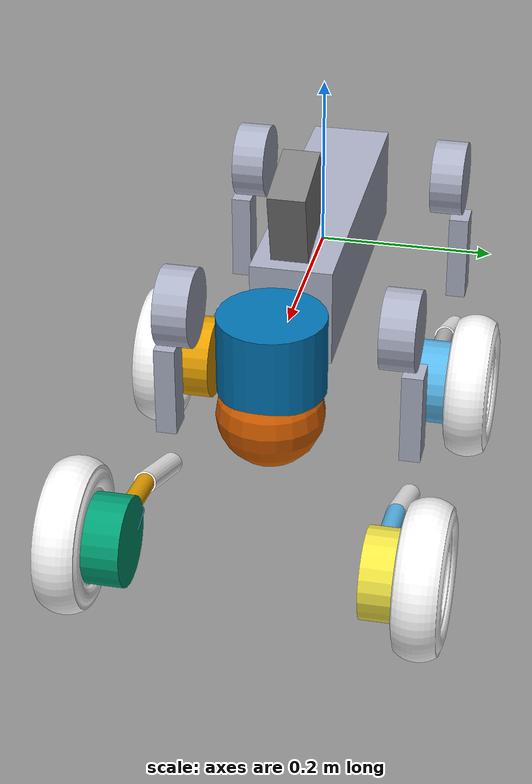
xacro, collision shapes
<?xml version='1.0' encoding='utf-8'?>
<robot name="go2w_description" xmlns:xacro="http://ros.org/wiki/xacro">
  <xacro:arg name="pointcloud_noise_enabled" default="false"/>
  <xacro:arg name="pointcloud_noise_mean" default="0.0"/>
  <xacro:arg name="pointcloud_noise_stddev" default="0.015"/>

  <!-- Include Livox MID-360 LiDAR macro -->
  <xacro:include filename="$(find go2_gazebo_sim)/urdf/go2w/livox_mid360.xacro"/>
  <xacro:property name="go2w_mesh_root" value="file://$(find go2w_description)/dae"/>

  <!-- Instantiate Livox MID-360 LiDAR attached to IMU frame -->
  <xacro:livox_mid360 parent="imu" name="livox_mid360"/>

  <link name="base">
    <inertial>
      <origin xyz="0.021112 0 -0.005366" rpy="0 0 0" />
      <mass value="6.921" />
      <inertia ixx="0.02448" ixy="0.00012166" ixz="0.0014849" iyy="0.098077" iyz="-3.12E-05" izz="0.107" />
    </inertial>
    <visual>
      <origin xyz="0 0 0" rpy="0 0 0" />
      <geometry>
        <mesh filename="${go2w_mesh_root}/base.dae" />
      </geometry>
      <material name="深色橡胶_001-effect"><color rgba="0.6717055 0.6924257 0.7742702 1" /></material><material name="白色logo_001-effect"><color rgba="1 1 1 1" /></material><material name="黑色贴纸_007-effect"><color rgba="0.009018 0.009018 0.009018 1" /></material><material name="黑色金属_007-effect"><color rgba="0.01341 0.01341 0.01341 1" /></material><material name="黑色塑料_003-effect"><color rgba="0.023455 0.023455 0.023455 1" /></material></visual>
    <collision>
      <origin rpy="0 0 0" xyz="0 0 0" />
      <geometry>
        <box size="0.3762 0.0935 0.114" />
      </geometry>
    </collision>
  </link>

  <!-- Bridge frame for controllers that expect base_link. -->
  <link name="base_link">
    <inertial>
      <origin xyz="0 0 0" rpy="0 0 0" />
      <mass value="0.001" />
      <inertia ixx="1e-6" ixy="0" ixz="0" iyy="1e-6" iyz="0" izz="1e-6" />
    </inertial>
  </link>
  <joint name="base_link_to_base" type="fixed">
    <origin xyz="0 0 0" rpy="0 0 0" />
    <parent link="base_link" />
    <child link="base" />
    <axis xyz="0 0 0" />
  </joint>
  <link name="Head_upper">
    <inertial>
      <origin xyz="0 0 0" rpy="0 0 0" />
      <mass value="0.001" />
      <inertia ixx="9.6e-06" ixy="0" ixz="0" iyy="9.6e-06" iyz="0" izz="9.6e-06" />
    </inertial>
    <collision>
      <origin xyz="0 0 0" rpy="0 0 0" />
      <geometry>
        <cylinder radius="0.06" length="0.09" />
      </geometry>
    </collision>
  </link>
  <joint name="Head_upper_joint" type="fixed" dont_collapse="true">
    <origin xyz="0.285 0 0.01" rpy="0 0 0" />
    <parent link="base" />
    <child link="Head_upper" />
    <axis xyz="0 0 0" />
  </joint>
  <link name="Head_lower">
    <inertial>
      <origin xyz="0 0 0" rpy="0 0 0" />
      <mass value="0.001" />
      <inertia ixx="9.6e-06" ixy="0" ixz="0" iyy="9.6e-06" iyz="0" izz="9.6e-06" />
    </inertial>
    <collision>
      <origin xyz="0 0 0" rpy="0 0 0" />
      <geometry>
        <sphere radius="0.06" />
      </geometry>
    </collision>
  </link>
  <joint name="Head_lower_joint" type="fixed" dont_collapse="true">
    <origin xyz="0.008 0 -0.07" rpy="0 0 0" />
    <parent link="Head_upper" />
    <child link="Head_lower" />
    <axis xyz="0 0 0" />
  </joint>
  <link name="FL_hip">
    <inertial>
      <origin xyz="-0.0054 0.00194 -0.000105" rpy="0 0 0" />
      <mass value="0.678" />
      <inertia ixx="0.00048" ixy="-3.01E-06" ixz="1.11E-06" iyy="0.000884" iyz="-1.42E-06" izz="0.000596" />
    </inertial>
    <visual>
      <origin xyz="0 0 0" rpy="0 0 0" />
      <geometry>
        <mesh filename="${go2w_mesh_root}/hip.dae" />
      </geometry>
      <material name="深色橡胶_001-effect"><color rgba="0.6717055 0.6924257 0.7742702 1" /></material><material name="Material-effect"><color rgba="0.9 0.95 0.95 1" /></material></visual>
    <collision>
      <origin rpy="1.5707963267948966 0 0" xyz="0 0.08 0" />
      <geometry>
        <cylinder length="0.04" radius="0.046" />
      </geometry>
    </collision>
  </link>
  <joint name="FL_hip_joint" type="revolute">
    <origin xyz="0.1934 0.0465 0" rpy="0 0 0" />
    <parent link="base" />
    <child link="FL_hip" />
    <axis xyz="1 0 0" />
    <limit lower="-1.0472" upper="1.0472" effort="23.7" velocity="30.1" />
  </joint>
  <link name="FL_thigh">
    <inertial>
      <origin xyz="-0.00374 -0.0223 -0.0327" rpy="0 0 0" />
      <mass value="1.152" />
      <inertia ixx="0.00584" ixy="8.72E-05" ixz="-0.000289" iyy="0.0058" iyz="0.000808" izz="0.00103" />
    </inertial>
    <visual>
      <origin xyz="0 0 0" rpy="0 0 0" />
      <geometry>
        <mesh filename="${go2w_mesh_root}/thigh.dae" />
      </geometry>
      <material name="深色橡胶_003-effect"><color rgba="0.6717055 0.6924257 0.7742702 1" /></material><material name="Material_009-effect"><color rgba="0.9 0.95 0.95 1" /></material></visual>
    <collision>
      <origin rpy="0 1.5707963267948966 0" xyz="0 0 -0.1065" />
      <geometry>
        <box size="0.11 0.0245 0.034" />
      </geometry>
    </collision>
  </link>
  <joint name="FL_thigh_joint" type="revolute">
    <origin xyz="0 0.0955 0" rpy="0 0 0" />
    <parent link="FL_hip" />
    <child link="FL_thigh" />
    <axis xyz="0 1 0" />
    <limit lower="-1.5707963267948966" upper="3.4907" effort="23.7" velocity="30.1" />
  </joint>
  <link name="FL_calf">
    <inertial>
      <origin xyz="0.00548 -0.000975 -0.115" rpy="0 0 0" />
      <mass value="0.154" />
      <inertia ixx="0.00108" ixy="3.4E-07" ixz="1.72E-05" iyy="0.0011" iyz="8.28E-06" izz="3.29E-05" />
    </inertial>
    <visual>
      <origin xyz="0 0 0" rpy="0 0 0" />
      <geometry>
        <mesh filename="${go2w_mesh_root}/calf.stl" />
      </geometry>
      <material name="">
        <color rgba="1 1 1 1" />
      </material>
    </visual>
    <collision>
      <origin rpy="0 -0.21 0" xyz="0.008 0 -0.06" />
      <geometry>
        <cylinder length="0.12" radius="0.012" />
      </geometry>
    </collision>
  </link>
  <joint name="FL_calf_joint" type="revolute">
    <origin xyz="0 0 -0.213" rpy="0 0 0" />
    <parent link="FL_thigh" />
    <child link="FL_calf" />
    <axis xyz="0 1 0" />
    <limit lower="-2.7227" upper="-0.83776" effort="35.55" velocity="20.07" />
  </joint>
  <link name="FL_calflower">
    <collision>
      <origin rpy="0 0 0" xyz="0 0 0" />
      <geometry>
        <cylinder length="0.065" radius="0.011" />
      </geometry>
    </collision>
  </link>
  <joint name="FL_calflower_joint" type="fixed">
    <origin xyz="0.020 0 -0.148" rpy="0 0.05 0" />
    <parent link="FL_calf" />
    <child link="FL_calflower" />
    <axis xyz="0 0 0" />
  </joint>
  <link name="FL_calflower1">
    <collision>
      <origin rpy="0 0 0" xyz="0 0 0" />
      <geometry>
        <cylinder length="0.03" radius="0.0155" />
      </geometry>
    </collision>
  </link>
  <joint name="FL_calflower1_joint" type="fixed">
    <origin xyz="-0.01 0 -0.04" rpy="0 0.48 0" />
    <parent link="FL_calflower" />
    <child link="FL_calflower1" />
    <axis xyz="0 0 0" />
  </joint>

  <link name="FL_foot_motor">
    <inertial>
      <origin xyz="0 0.0 0" rpy="0 0 0" />
      <mass value="0.646" />
      <inertia ixx="0.001" ixy="0" ixz="0" iyy="0.0016" iyz="0" izz="0.001" />
    </inertial>
    <collision>
      <origin rpy="1.5707963267948966 0 0" xyz="0 0 0" />
      <geometry>
        <cylinder length="0.05" radius="0.05" />
      </geometry>
    </collision>
  </link>

  <joint name="FL_foot_motor_joint" type="fixed">
    <origin xyz="-0.00 0.01 -0.2264" rpy="0 0.0 0" />
    <parent link="FL_calf" />
    <child link="FL_foot_motor" />
    <axis xyz="0 0 0" />
  </joint>

  <link name="FL_foot">
    <inertial>
      <origin xyz="0 0.06 0" rpy="0 0 0" />
      <mass value="0.520" />
      <inertia ixx="0.0007" ixy="0" ixz="0" iyy="0.0012" iyz="0" izz="0.0007" />
    </inertial>
    <visual>
      <origin xyz="0 0 0" rpy="0 0 0" />
      <geometry>
        <mesh filename="${go2w_mesh_root}/left_wheel.dae" />
      </geometry>
      <material name="">
        <color rgba="1 1 1 1" />
      </material>
    </visual>
    <collision>
      <origin rpy="0 0 0" xyz="0 0.0 0" />
      <geometry>
        <mesh filename="${go2w_mesh_root}/left_wheel.dae" />
      </geometry>
    </collision>
  </link>
  <joint name="FL_foot_joint" type="continuous">
    <origin xyz="0 0 -0.2264" rpy="0 0 0" />
    <parent link="FL_calf" />
    <child link="FL_foot" />
    <axis xyz="0 1 0" />

      <limit effort="23.7" velocity="30.1" />
  </joint>

  <link name="FR_hip">
    <inertial>
      <origin xyz="-0.0054 -0.00194 -0.000105" rpy="0 0 0" />
      <mass value="0.678" />
      <inertia ixx="0.00048" ixy="3.01E-06" ixz="1.11E-06" iyy="0.000884" iyz="1.42E-06" izz="0.000596" />
    </inertial>
    <visual>
      <origin xyz="0 0 0" rpy="3.1415 0 0" />
      <geometry>
        <mesh filename="${go2w_mesh_root}/hip.dae" />
      </geometry>
      <material name="深色橡胶_001-effect"><color rgba="0.6717055 0.6924257 0.7742702 1" /></material><material name="Material-effect"><color rgba="0.9 0.95 0.95 1" /></material></visual>
    <collision>
      <origin rpy="1.5707963267948966 0 0" xyz="0 -0.08 0" />
      <geometry>
        <cylinder length="0.04" radius="0.046" />
      </geometry>
    </collision>
  </link>
  <joint name="FR_hip_joint" type="revolute">
    <origin xyz="0.1934 -0.0465 0" rpy="0 0 0" />
    <parent link="base" />
    <child link="FR_hip" />
    <axis xyz="1 0 0" />
    <limit lower="-1.0472" upper="1.0472" effort="23.7" velocity="30.1" />
  </joint>
  <link name="FR_thigh">
    <inertial>
      <origin xyz="-0.00374 0.0223 -0.0327" rpy="0 0 0" />
      <mass value="1.152" />
      <inertia ixx="0.00584" ixy="-8.72E-05" ixz="-0.000289" iyy="0.0058" iyz="-0.000808" izz="0.00103" />
    </inertial>
    <visual>
      <origin xyz="0 0 0" rpy="0 0 0" />
      <geometry>
        <mesh filename="${go2w_mesh_root}/thigh_mirror.dae" />
      </geometry>
      <material name="深色橡胶_012-effect"><color rgba="0.6717055 0.6924257 0.7742702 1" /></material><material name="Material_011-effect"><color rgba="0.9 0.95 0.95 1" /></material></visual>
    <collision>
      <origin rpy="0 1.5707963267948966 0" xyz="0 0 -0.1065" />
      <geometry>
        <box size="0.11 0.0245 0.034" />
      </geometry>
    </collision>
  </link>
  <joint name="FR_thigh_joint" type="revolute">
    <origin xyz="0 -0.0955 0" rpy="0 0 0" />
    <parent link="FR_hip" />
    <child link="FR_thigh" />
    <axis xyz="0 1 0" />
    <limit lower="-1.5707963267948966" upper="3.4907" effort="23.7" velocity="30.1" />
  </joint>
  <link name="FR_calf">
    <inertial>
      <origin xyz="0.00548 0.000975 -0.115" rpy="0 0 0" />
      <mass value="0.154" />
      <inertia ixx="0.00108" ixy="-3.4E-07" ixz="1.72E-05" iyy="0.0011" iyz="-8.28E-06" izz="3.29E-05" />
    </inertial>
    <visual>
      <origin xyz="0 0 0" rpy="0 0 0" />
      <geometry>
        <mesh filename="${go2w_mesh_root}/calf_mirror.stl" />
      </geometry>
      <material name="">
        <color rgba="1 1 1 1" />
      </material>
    </visual>
    <collision>
      <origin rpy="0 -0.2 0" xyz="0.01 0 -0.06" />
      <geometry>
        <cylinder length="0.12" radius="0.013" />
      </geometry>
    </collision>
  </link>
  <joint name="FR_calf_joint" type="revolute">
    <origin xyz="0 0 -0.213" rpy="0 0 0" />
    <parent link="FR_thigh" />
    <child link="FR_calf" />
    <axis xyz="0 1 0" />
    <limit lower="-2.7227" upper="-0.83776" effort="35.55" velocity="20.07" />
  </joint>
  <link name="FR_calflower">
    <collision>
      <origin rpy="0 0 0" xyz="0 0 0" />
      <geometry>
        <cylinder length="0.065" radius="0.011" />
      </geometry>
    </collision>
  </link>
  <joint name="FR_calflower_joint" type="fixed">
    <origin xyz="0.020 0 -0.148" rpy="0 0.05 0" />
    <parent link="FR_calf" />
    <child link="FR_calflower" />
    <axis xyz="0 0 0" />
  </joint>
  <link name="FR_calflower1">
    <collision>
      <origin rpy="0 0 0" xyz="0 0 0" />
      <geometry>
        <cylinder length="0.03" radius="0.0155" />
      </geometry>
    </collision>
  </link>
  <joint name="FR_calflower1_joint" type="fixed">
    <origin xyz="-0.01 0 -0.04" rpy="0 0.48 0" />
    <parent link="FR_calflower" />
    <child link="FR_calflower1" />
    <axis xyz="0 0 0" />
  </joint>

  <link name="FR_foot_motor">
    <inertial>
      <origin xyz="0 0.0 0" rpy="0 0 0" />
      <mass value="0.646" />
      <inertia ixx="0.001" ixy="0" ixz="0" iyy="0.0016" iyz="0" izz="0.001" />
    </inertial>
    <collision>
      <origin rpy="1.5707963267948966 0 0" xyz="0 0 0" />
      <geometry>
        <cylinder length="0.05" radius="0.05" />
      </geometry>
    </collision>
  </link>

  <joint name="FR_foot_motor_joint" type="fixed">
    <origin xyz="0.0 -0.01 -0.2264" rpy="0 0.0 0" />
    <parent link="FR_calf" />
    <child link="FR_foot_motor" />
    <axis xyz="0 0 0" />
  </joint>

  <link name="FR_foot">
    <inertial>
      <origin xyz="0 -0.06 0" rpy="0 0 0" />
      <mass value="0.520" />
      <inertia ixx="0.0007" ixy="0" ixz="0" iyy="0.0012" iyz="0" izz="0.0007" />
    </inertial>
    <visual>
      <origin xyz="0 0 0" rpy="0 0 0" />
      <geometry>
        <mesh filename="${go2w_mesh_root}/right_wheel.dae" />
      </geometry>
      <material name="">
        <color rgba="1 1 1 1" />
      </material>
    </visual>
    <collision>
      <origin rpy="0 0 0" xyz="0 -0.0 0" />
      <geometry>
        <mesh filename="${go2w_mesh_root}/right_wheel.dae" />

      </geometry>
    </collision>
  </link>
  <joint name="FR_foot_joint" type="continuous">
    <origin xyz="0 0 -0.2264" rpy="0 0 0" />
    <parent link="FR_calf" />
    <child link="FR_foot" />
    <axis xyz="0 1 0" />
      <limit effort="23.7" velocity="30.1" />
  </joint>

  <link name="RL_hip">
    <inertial>
      <origin xyz="0.0054 0.00194 -0.000105" rpy="0 0 0" />
      <mass value="0.678" />
      <inertia ixx="0.00048" ixy="3.01E-06" ixz="-1.11E-06" iyy="0.000884" iyz="-1.42E-06" izz="0.000596" />
    </inertial>
    <visual>
      <origin xyz="0 0 0" rpy="0 3.1415 0" />
      <geometry>
        <mesh filename="${go2w_mesh_root}/hip.dae" />
      </geometry>
      <material name="深色橡胶_001-effect"><color rgba="0.6717055 0.6924257 0.7742702 1" /></material><material name="Material-effect"><color rgba="0.9 0.95 0.95 1" /></material></visual>
    <collision>
      <origin rpy="1.5707963267948966 0 0" xyz="0 0.08 0" />
      <geometry>
        <cylinder length="0.04" radius="0.046" />
      </geometry>
    </collision>
  </link>
  <joint name="RL_hip_joint" type="revolute">
    <origin xyz="-0.1934 0.0465 0" rpy="0 0 0" />
    <parent link="base" />
    <child link="RL_hip" />
    <axis xyz="1 0 0" />
    <limit lower="-1.0472" upper="1.0472" effort="23.7" velocity="30.1" />
  </joint>
  <link name="RL_thigh">
    <inertial>
      <origin xyz="-0.00374 -0.0223 -0.0327" rpy="0 0 0" />
      <mass value="1.152" />
      <inertia ixx="0.00584" ixy="8.72E-05" ixz="-0.000289" iyy="0.0058" iyz="0.000808" izz="0.00103" />
    </inertial>
    <visual>
      <origin xyz="0 0 0" rpy="0 0 0" />
      <geometry>
        <mesh filename="${go2w_mesh_root}/thigh.dae" />
      </geometry>
      <material name="深色橡胶_003-effect"><color rgba="0.6717055 0.6924257 0.7742702 1" /></material><material name="Material_009-effect"><color rgba="0.9 0.95 0.95 1" /></material></visual>
    <collision>
      <origin rpy="0 1.5707963267948966 0" xyz="0 0 -0.1065" />
      <geometry>
        <box size="0.11 0.0245 0.034" />
      </geometry>
    </collision>
  </link>
  <joint name="RL_thigh_joint" type="revolute">
    <origin xyz="0 0.0955 0" rpy="0 0 0" />
    <parent link="RL_hip" />
    <child link="RL_thigh" />
    <axis xyz="0 1 0" />
    <limit lower="-0.5236" upper="4.5379" effort="23.7" velocity="30.1" />
  </joint>
  <link name="RL_calf">
    <inertial>
      <origin xyz="0.00548 -0.000975 -0.115" rpy="0 0 0" />
      <mass value="0.154" />
      <inertia ixx="0.00108" ixy="3.4E-07" ixz="1.72E-05" iyy="0.0011" iyz="8.28E-06" izz="3.29E-05" />
    </inertial>
    <visual>
      <origin xyz="0 0 0" rpy="0 0 0" />
      <geometry>
        <mesh filename="${go2w_mesh_root}/calf.stl" />
      </geometry>
      <material name="">
        <color rgba="1 1 1 1" />
      </material>
    </visual>
    <collision>
      <origin rpy="0 -0.2 0" xyz="0.01 0 -0.06" />
      <geometry>
        <cylinder length="0.12" radius="0.013" />
      </geometry>
    </collision>
  </link>
  <joint name="RL_calf_joint" type="revolute">
    <origin xyz="0 0 -0.213" rpy="0 0 0" />
    <parent link="RL_thigh" />
    <child link="RL_calf" />
    <axis xyz="0 1 0" />
    <limit lower="-2.7227" upper="-0.83776" effort="35.55" velocity="20.07" />
  </joint>
  <link name="RL_calflower">
    <collision>
      <origin rpy="0 0 0" xyz="0 0 0" />
      <geometry>
        <cylinder length="0.065" radius="0.011" />
      </geometry>
    </collision>
  </link>
  <joint name="RL_calflower_joint" type="fixed">
    <origin xyz="0.020 0 -0.148" rpy="0 0.05 0" />
    <parent link="RL_calf" />
    <child link="RL_calflower" />
    <axis xyz="0 0 0" />
  </joint>
  <link name="RL_calflower1">
    <collision>
      <origin rpy="0 0 0" xyz="0 0 0" />
      <geometry>
        <cylinder length="0.03" radius="0.0155" />
      </geometry>
    </collision>
  </link>
  <joint name="RL_calflower1_joint" type="fixed">
    <origin xyz="-0.01 0 -0.04" rpy="0 0.48 0" />
    <parent link="RL_calflower" />
    <child link="RL_calflower1" />
    <axis xyz="0 0 0" />
  </joint>

  <link name="RL_foot_motor">
  <inertial>
    <origin xyz="0 0.0 0" rpy="0 0 0" />
    <mass value="0.646" />
    <inertia ixx="0.001" ixy="0" ixz="0" iyy="0.0016" iyz="0" izz="0.001" />
  </inertial>
  <collision>
    <origin rpy="1.5707963267948966 0 0" xyz="0 0 0" />
    <geometry>
      <cylinder length="0.05" radius="0.05" />
    </geometry>
  </collision>
</link>

<joint name="RL_foot_motor_joint" type="fixed">
  <origin xyz="0.00 0.01 -0.2264" rpy="0 0.0 0" />
  <parent link="RL_calf" />
  <child link="RL_foot_motor" />
  <axis xyz="0 0 0" />
</joint>

  <link name="RL_foot">
    <inertial>
      <origin xyz="0 0.06 0" rpy="0 0 0" />
      <mass value="0.520" />
      <inertia ixx="0.0007" ixy="0" ixz="0" iyy="0.0012" iyz="0" izz="0.0007" />
    </inertial>
    <visual>
      <origin xyz="0 0 0" rpy="0 0 0" />
      <geometry>
        <mesh filename="${go2w_mesh_root}/left_wheel.dae" />
      </geometry>
      <material name="">
        <color rgba="1 1 1 1" />
      </material>
    </visual>
    <collision>
      <origin rpy="0 0 0" xyz="0 0.0 0" />
      <geometry>
        <mesh filename="${go2w_mesh_root}/left_wheel.dae" />

      </geometry>
    </collision>
  </link>
  <joint name="RL_foot_joint" type="continuous">
    <origin xyz="0.0 0 -0.2264" rpy="0 0 0" />
    <parent link="RL_calf" />
    <child link="RL_foot" />
    <axis xyz="0 1 0" />
      <limit effort="23.7" velocity="30.1" />
  </joint>

  <link name="RR_hip">
    <inertial>
      <origin xyz="0.0054 -0.00194 -0.000105" rpy="0 0 0" />
      <mass value="0.678" />
      <inertia ixx="0.00048" ixy="-3.01E-06" ixz="-1.11E-06" iyy="0.000884" iyz="1.42E-06" izz="0.000596" />
    </inertial>
    <visual>
      <origin xyz="0 0 0" rpy="3.1415 3.1415 0" />
      <geometry>
        <mesh filename="${go2w_mesh_root}/hip.dae" />
      </geometry>
      <material name="深色橡胶_001-effect"><color rgba="0.6717055 0.6924257 0.7742702 1" /></material><material name="Material-effect"><color rgba="0.9 0.95 0.95 1" /></material></visual>
    <collision>
      <origin rpy="1.5707963267948966 0 0" xyz="0 -0.08 0" />
      <geometry>
        <cylinder length="0.04" radius="0.046" />
      </geometry>
    </collision>
  </link>
  <joint name="RR_hip_joint" type="revolute">
    <origin xyz="-0.1934 -0.0465 0" rpy="0 0 0" />
    <parent link="base" />
    <child link="RR_hip" />
    <axis xyz="1 0 0" />
    <limit lower="-1.0472" upper="1.0472" effort="23.7" velocity="30.1" />
  </joint>
  <link name="RR_thigh">
    <inertial>
      <origin xyz="-0.00374 0.0223 -0.0327" rpy="0 0 0" />
      <mass value="1.152" />
      <inertia ixx="0.00584" ixy="-8.72E-05" ixz="-0.000289" iyy="0.0058" iyz="-0.000808" izz="0.00103" />
    </inertial>
    <visual>
      <origin xyz="0 0 0" rpy="0 0 0" />
      <geometry>
        <mesh filename="${go2w_mesh_root}/thigh_mirror.dae" />
      </geometry>
      <material name="深色橡胶_012-effect"><color rgba="0.6717055 0.6924257 0.7742702 1" /></material><material name="Material_011-effect"><color rgba="0.9 0.95 0.95 1" /></material></visual>
    <collision>
      <origin rpy="0 1.5707963267948966 0" xyz="0 0 -0.1065" />
      <geometry>
        <box size="0.11 0.0245 0.034" />
      </geometry>
    </collision>
  </link>
  <joint name="RR_thigh_joint" type="revolute">
    <origin xyz="0 -0.0955 0" rpy="0 0 0" />
    <parent link="RR_hip" />
    <child link="RR_thigh" />
    <axis xyz="0 1 0" />
    <limit lower="-0.5236" upper="4.5379" effort="23.7" velocity="30.1" />
  </joint>
  <link name="RR_calf">
    <inertial>
      <origin xyz="0.00548 0.000975 -0.115" rpy="0 0 0" />
      <mass value="0.154" />
      <inertia ixx="0.00108" ixy="-3.4E-07" ixz="1.72E-05" iyy="0.0011" iyz="-8.28E-06" izz="3.29E-05" />
    </inertial>
    <visual>
      <origin xyz="0 0 0" rpy="0 0 0" />
      <geometry>
        <mesh filename="${go2w_mesh_root}/calf_mirror.stl" />
      </geometry>
      <material name="">
        <color rgba="1 1 1 1" />
      </material>
    </visual>
    <collision>
      <origin rpy="0 -0.2 0" xyz="0.01 0 -0.06" />
      <geometry>
        <cylinder length="0.12" radius="0.013" />
      </geometry>
    </collision>
  </link>
  <joint name="RR_calf_joint" type="revolute">
    <origin xyz="0 0 -0.213" rpy="0 0 0" />
    <parent link="RR_thigh" />
    <child link="RR_calf" />
    <axis xyz="0 1 0" />
    <limit lower="-2.7227" upper="-0.83776" effort="35.55" velocity="20.07" />
  </joint>
  <link name="RR_calflower">
    <collision>
      <origin rpy="0 0 0" xyz="0 0 0" />
      <geometry>
        <cylinder length="0.065" radius="0.011" />
      </geometry>
    </collision>
  </link>
  <joint name="RR_calflower_joint" type="fixed">
    <origin xyz="0.020 0 -0.148" rpy="0 0.05 0" />
    <parent link="RR_calf" />
    <child link="RR_calflower" />
    <axis xyz="0 0 0" />
  </joint>
  <link name="RR_calflower1">
    <collision>
      <origin rpy="0 0 0" xyz="0 0 0" />
      <geometry>
        <cylinder length="0.03" radius="0.0155" />
      </geometry>
    </collision>
  </link>
  <joint name="RR_calflower1_joint" type="fixed">
    <origin xyz="-0.01 0 -0.04" rpy="0 0.48 0" />
    <parent link="RR_calflower" />
    <child link="RR_calflower1" />
    <axis xyz="0 0 0" />
  </joint>

  <link name="RR_foot_motor">
  <inertial>
    <origin xyz="0 0.0 0" rpy="0 0 0" />
    <mass value="0.646" />
    <inertia ixx="0.001" ixy="0" ixz="0" iyy="0.0016" iyz="0" izz="0.001" />
  </inertial>
  <collision>
    <origin rpy="1.5707963267948966 0 0" xyz="0 0 0" />
    <geometry>
      <cylinder length="0.05" radius="0.05" />
    </geometry>
  </collision>
</link>

<joint name="RR_foot_motor_joint" type="fixed">
  <origin xyz="0.00 -0.01 -0.2264" rpy="0 0.0 0" />
  <parent link="RR_calf" />
  <child link="RR_foot_motor" />
  <axis xyz="0 0 0" />
</joint>

  <link name="RR_foot">
    <inertial>
      <origin xyz="0 -0.06 0" rpy="0 0 0" />
      <mass value="0.520" />
      <inertia ixx="0.0007" ixy="0" ixz="0" iyy="0.0012" iyz="0" izz="0.0007" />
    </inertial>
    <visual>
      <origin xyz="0 0 0" rpy="0 0 0" />
      <geometry>
        <mesh filename="${go2w_mesh_root}/right_wheel.dae" />
      </geometry>
      <material name="">
        <color rgba="1 1 1 1" />
      </material>
    </visual>
    <collision>
      <origin rpy="0 0 0" xyz="0 -0.0 0" />
      <geometry>
        <mesh filename="${go2w_mesh_root}/right_wheel.dae" />

      </geometry>
    </collision>
  </link>
  <joint name="RR_foot_joint" type="continuous">
    <origin xyz="-0.0 0 -0.2264" rpy="0 0 0" />
    <parent link="RR_calf" />
    <child link="RR_foot" />
    <axis xyz="0 1 0" />
      <limit effort="23.7" velocity="30.1" />
  </joint>
  <link name="imu">
    <inertial>
      <origin xyz="0 0 0" rpy="0 0 0" />
      <mass value="0" />
      <inertia ixx="0" ixy="0" ixz="0" iyy="0" iyz="0" izz="0" />
    </inertial>
  </link>
  <joint name="imu_joint" type="fixed">
    <origin xyz="-0.02557 0 0.04232" rpy="0 0 0" />
    <parent link="base" />
    <child link="imu" />
    <axis xyz="0 0 0" />
  </joint>
  <link name="radar">
    <inertial>
      <origin xyz="0 0 0" rpy="0 0 0" />
      <mass value="0" />
      <inertia ixx="0" ixy="0" ixz="0" iyy="0" iyz="0" izz="0" />
    </inertial>
  </link>
  <joint name="radar_joint" type="fixed">
    <origin xyz="0.28945 0 -0.046825" rpy="0 2.8782 0" />
    <parent link="base" />
    <child link="radar" />
    <axis xyz="0 0 0" />
  </joint>

  <!-- Gazebo IMU stream for SLAM pipelines expecting /imu/data.
       Noise values are BMI088-class (Unitree Go2 actual IMU):
       gyro noise density ~0.0017 rad/s, accel noise density ~0.017 m/s². -->
  <gazebo reference="imu">
    <sensor name="imu_sensor" type="imu">
      <always_on>true</always_on>
      <update_rate>200.0</update_rate>
      <imu>
        <angular_velocity>
          <x><noise type="gaussian"><mean>0.0</mean><stddev>0.0017</stddev></noise></x>
          <y><noise type="gaussian"><mean>0.0</mean><stddev>0.0017</stddev></noise></y>
          <z><noise type="gaussian"><mean>0.0</mean><stddev>0.0017</stddev></noise></z>
        </angular_velocity>
        <linear_acceleration>
          <x><noise type="gaussian"><mean>0.0</mean><stddev>0.017</stddev></noise></x>
          <y><noise type="gaussian"><mean>0.0</mean><stddev>0.017</stddev></noise></y>
          <z><noise type="gaussian"><mean>0.0</mean><stddev>0.017</stddev></noise></z>
        </linear_acceleration>
      </imu>
      <plugin name="gazebo_ros_imu" filename="libgazebo_ros_imu_sensor.so">
        <ros>
          <remapping>~/out:=/imu/data</remapping>
        </ros>
        <frame_name>imu</frame_name>
      </plugin>
    </sensor>
  </gazebo>

  <gazebo reference="livox_mid360">
    <sensor name="lidar_3d" type="gpu_ray">
      <pose>0 0 0 0 0 0</pose>
      <update_rate>10.0</update_rate>
      <ray>
        <scan>
          <horizontal>
            <samples>720</samples>
            <resolution>1</resolution>
            <min_angle>-3.14159</min_angle>
            <max_angle>3.14159</max_angle>
          </horizontal>
          <vertical>
            <samples>16</samples>
            <resolution>1</resolution>
            <min_angle>-0.261799</min_angle>
            <max_angle>0.7330</max_angle>
          </vertical>
        </scan>
        <range>
          <min>0.05</min>
          <max>20.0</max>
          <resolution>0.01</resolution>
        </range>
        <xacro:if value="$(arg pointcloud_noise_enabled)">
          <noise>
            <type>gaussian</type>
            <mean>$(arg pointcloud_noise_mean)</mean>
            <stddev>$(arg pointcloud_noise_stddev)</stddev>
          </noise>
        </xacro:if>
      </ray>
      <plugin name="gazebo_ros_3d_lidar" filename="libgazebo_ros_ray_sensor.so">
        <ros>
          <remapping>~/out:=/registered_scan</remapping>
        </ros>
        <output_type>sensor_msgs/PointCloud2</output_type>
        <frameName>livox_mid360</frameName>
      </plugin>
    </sensor>
  </gazebo>

  <link name="front_camera_link">
    <inertial>
      <origin xyz="0 0 0" rpy="0 0 0"/>
      <mass value="0.001"/>
      <inertia ixx="1e-6" ixy="0" ixz="0" iyy="1e-6" iyz="0" izz="1e-6"/>
    </inertial>
    <visual>
      <origin xyz="0 0 0" rpy="0 0 0"/>
      <geometry>
        <box size="0.02 0.03 0.02"/>
      </geometry>
      <material name="camera_black">
        <color rgba="0.1 0.1 0.1 1"/>
      </material>
    </visual>
  </link>
  <joint name="front_camera_joint" type="fixed">
    <!-- Relative to Head_upper which is already at [0.285, 0, 0.01] from base.
         Offset slightly forward + down with 5 deg pitch. -->
    <origin xyz="0.015 0.0 -0.02" rpy="0 0.0873 0"/>
    <parent link="Head_upper"/>
    <child link="front_camera_link"/>
  </joint>

  <gazebo reference="front_camera_link">
    <sensor name="front_camera" type="camera">
      <always_on>true</always_on>
      <update_rate>10.0</update_rate>
      <camera>
        <horizontal_fov>2.0944</horizontal_fov>
        <image>
          <width>1280</width>
          <height>720</height>
          <format>R8G8B8</format>
        </image>
        <clip>
          <near>0.05</near>
          <far>30.0</far>
        </clip>
      </camera>
      <plugin name="gazebo_ros_front_camera" filename="libgazebo_ros_camera.so">
        <ros>
          <remapping>~/image_raw:=front_camera/image_raw</remapping>
          <remapping>~/camera_info:=front_camera/camera_info</remapping>
        </ros>
        <frame_name>front_camera_link</frame_name>
      </plugin>
    </sensor>
  </gazebo>

  <!-- Contact sensor on robot body for collision detection. -->
  <gazebo reference="base">
    <sensor name="base_contact" type="contact">
      <always_on>true</always_on>
      <update_rate>30.0</update_rate>
      <contact>
        <collision>base_link_fixed_joint_lump__base_collision</collision>
      </contact>
      <plugin name="gazebo_ros_bumper" filename="libgazebo_ros_bumper.so">
        <ros>
          <remapping>bumper_states:=contact_states</remapping>
        </ros>
        <frame_name>base_link</frame_name>
      </plugin>
    </sensor>
  </gazebo>

  <!-- Ground-truth odometry for navigation bootstrap. -->
  <gazebo>
    <plugin name="p3d_base_controller" filename="libgazebo_ros_p3d.so">
      <ros>
        <remapping>odom:=odom/ground_truth</remapping>
      </ros>
      <body_name>base_link</body_name>
      <frame_name>world</frame_name>
      <update_rate>50.0</update_rate>
      <xyz_offset>0 0 0</xyz_offset>
      <rpy_offset>0 0 0</rpy_offset>
      <gaussian_noise>0.01</gaussian_noise>
    </plugin>
  </gazebo>

  <gazebo>
    <plugin filename="libgazebo_ros2_control.so" name="gazebo_ros2_control">
      <parameters>$(find go2_gazebo_sim)/config/ros_control/ros_control_go2w_robot_a.yaml</parameters>
    </plugin>
  </gazebo>

  <ros2_control name="go2w_system" type="system">
    <hardware>
      <plugin>gazebo_ros2_control/GazeboSystem</plugin>
    </hardware>
    <joint name="FL_hip_joint">
      <command_interface name="effort"/>
      <state_interface name="position"/>
      <state_interface name="velocity"/>
    </joint>
    <joint name="FL_thigh_joint">
      <command_interface name="effort"/>
      <state_interface name="position"/>
      <state_interface name="velocity"/>
    </joint>
    <joint name="FL_calf_joint">
      <command_interface name="effort"/>
      <state_interface name="position"/>
      <state_interface name="velocity"/>
    </joint>
    <joint name="FL_foot_joint">
      <command_interface name="velocity"/>
      <state_interface name="position"/>
      <state_interface name="velocity"/>
    </joint>
    <joint name="FR_hip_joint">
      <command_interface name="effort"/>
      <state_interface name="position"/>
      <state_interface name="velocity"/>
    </joint>
    <joint name="FR_thigh_joint">
      <command_interface name="effort"/>
      <state_interface name="position"/>
      <state_interface name="velocity"/>
    </joint>
    <joint name="FR_calf_joint">
      <command_interface name="effort"/>
      <state_interface name="position"/>
      <state_interface name="velocity"/>
    </joint>
    <joint name="FR_foot_joint">
      <command_interface name="velocity"/>
      <state_interface name="position"/>
      <state_interface name="velocity"/>
    </joint>
    <joint name="RL_hip_joint">
      <command_interface name="effort"/>
      <state_interface name="position"/>
      <state_interface name="velocity"/>
    </joint>
    <joint name="RL_thigh_joint">
      <command_interface name="effort"/>
      <state_interface name="position"/>
      <state_interface name="velocity"/>
    </joint>
    <joint name="RL_calf_joint">
      <command_interface name="effort"/>
      <state_interface name="position"/>
      <state_interface name="velocity"/>
    </joint>
    <joint name="RL_foot_joint">
      <command_interface name="velocity"/>
      <state_interface name="position"/>
      <state_interface name="velocity"/>
    </joint>
    <joint name="RR_hip_joint">
      <command_interface name="effort"/>
      <state_interface name="position"/>
      <state_interface name="velocity"/>
    </joint>
    <joint name="RR_thigh_joint">
      <command_interface name="effort"/>
      <state_interface name="position"/>
      <state_interface name="velocity"/>
    </joint>
    <joint name="RR_calf_joint">
      <command_interface name="effort"/>
      <state_interface name="position"/>
      <state_interface name="velocity"/>
    </joint>
    <joint name="RR_foot_joint">
      <command_interface name="velocity"/>
      <state_interface name="position"/>
      <state_interface name="velocity"/>
    </joint>
  </ros2_control>
</robot>

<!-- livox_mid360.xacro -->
<robot xmlns:xacro="http://ros.org/wiki/xacro">
  <xacro:property name="go2w_mesh_root" value="file://$(find go2w_description)/dae"/>

  <xacro:macro name="livox_mid360" params="parent:=imu name:=livox_mid360">

    <!-- LiDAR Base Link (visual/collision) -->
    <link name="${name}_base">
      <inertial>
        <origin xyz="0 0 0" rpy="0 0 0"/>
        <mass value="0.265"/>  <!-- MID-360 actual weight: ~265g -->
        <inertia ixx="0.0001" ixy="0" ixz="0"
                 iyy="0.0001" iyz="0"
                 izz="0.0001"/>
      </inertial>

      <visual>
        <origin xyz="0 0 0" rpy="1.5708 0 3.14159"/>
        <geometry>
          <mesh filename="${go2w_mesh_root}/mid-360.dae" scale="0.001 0.001 0.001"/>
        </geometry>
        <material name="livox_gray">
          <color rgba="0.5 0.5 0.5 1.0"/>
        </material>
      </visual>

      <collision>
        <origin xyz="0 0 0" rpy="1.5708 0 3.14159"/>
        <geometry>
          <!-- Simplified collision box: 86mm x 86mm x 42mm -->
          <box size="0.086 0.086 0.042"/>
        </geometry>
      </collision>
    </link>

    <!-- Joint from parent (typically IMU) to LiDAR base -->
    <joint name="${name}_base_joint" type="fixed">
      <parent link="${parent}"/>
      <child link="${name}_base"/>
      <origin xyz="0.1870 0 0.0803" rpy="0 0.2269 0"/>
    </joint>

    <!-- LiDAR Optical Frame (sensor frame for point cloud) -->
    <link name="${name}">
      <inertial>
        <origin xyz="0 0 0" rpy="0 0 0"/>
        <mass value="0.001"/>
        <inertia ixx="0.000001" ixy="0" ixz="0"
                 iyy="0.000001" iyz="0"
                 izz="0.000001"/>
      </inertial>
    </link>

    <!-- Joint from base to optical frame -->
    <joint name="${name}_optical_joint" type="fixed">
      <parent link="${name}_base"/>
      <child link="${name}"/>
      <!--
        No additional transform needed - optical frame at sensor origin
        Livox drivers will publish point cloud in this frame
      -->
      <origin xyz="0 0 0" rpy="0 0 0"/>
    </joint>

  </xacro:macro>

</robot>
